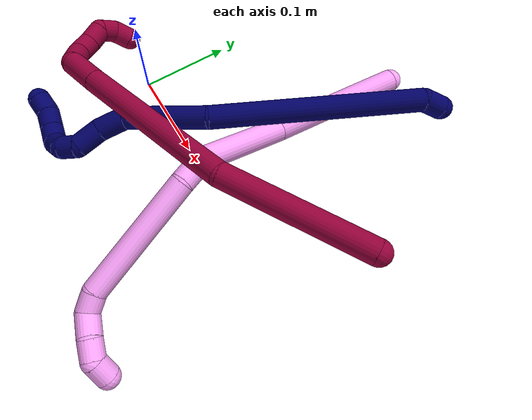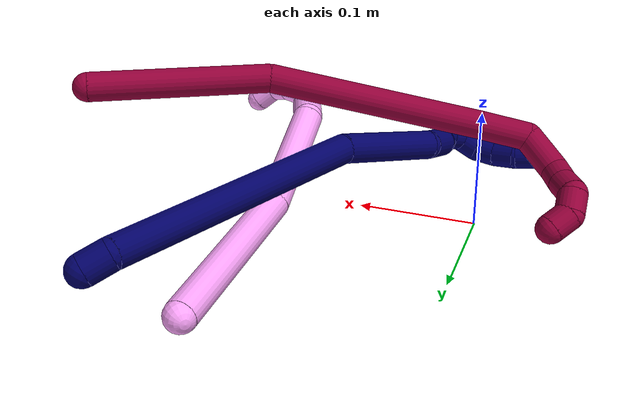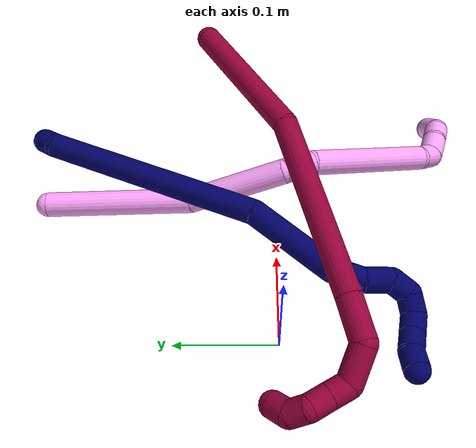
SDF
<sdf version="1.7">
 <world name="default">
  <model name="4">
   <static>0</static>
   <link name="4">
    <collision name="collision-cylinder-e_1_1_4">
     <pose>-0.027365 -0.045392 0.051741 0.720127 -0.378408 -0.143937</pose>
     <geometry><cylinder><radius>0.0125</radius><length>0.148142</length></cylinder></geometry>
     <surface>
      <friction><ode><mu>1.16</mu><mu2>1.16</mu2><slip1>0</slip1><slip2>0</slip2></ode></friction>
      <contact><ode><kp>1e+06</kp><kd>1</kd><max_vel>0</max_vel><min_depth>0.001</min_depth></ode></contact>
     </surface>
    </collision>
    <visual name="visual-cylinder-e_1_1_4">
     <pose>-0.027365 -0.045392 0.051741 0.720127 -0.378408 -0.143937</pose>
     <geometry><cylinder><radius>0.0125</radius><length>0.148142</length></cylinder></geometry>
     <material><ambient>1 0.65098 0.996078 1</ambient></material>
    </visual>
    <collision name="collision-cylinder-e_2_4_5">
     <pose>-0.084534 -0.110858 0.13918 0.512261 -0.629116 -0.170002</pose>
     <geometry><cylinder><radius>0.0125</radius><length>0.101302</length></cylinder></geometry>
     <surface>
      <friction><ode><mu>1.16</mu><mu2>1.16</mu2><slip1>0</slip1><slip2>0</slip2></ode></friction>
      <contact><ode><kp>1e+06</kp><kd>1</kd><max_vel>0</max_vel><min_depth>0.001</min_depth></ode></contact>
     </surface>
    </collision>
    <visual name="visual-cylinder-e_2_4_5">
     <pose>-0.084534 -0.110858 0.13918 0.512261 -0.629116 -0.170002</pose>
     <geometry><cylinder><radius>0.0125</radius><length>0.101302</length></cylinder></geometry>
     <material><ambient>1 0.65098 0.996078 1</ambient></material>
    </visual>
    <collision name="collision-cylinder-e_3_5_6">
     <pose>-0.116821 -0.136017 0.189421 0.336333 -0.159745 -0.027176</pose>
     <geometry><cylinder><radius>0.0125</radius><length>0.031213</length></cylinder></geometry>
     <surface>
      <friction><ode><mu>1.16</mu><mu2>1.16</mu2><slip1>0</slip1><slip2>0</slip2></ode></friction>
      <contact><ode><kp>1e+06</kp><kd>1</kd><max_vel>0</max_vel><min_depth>0.001</min_depth></ode></contact>
     </surface>
    </collision>
    <visual name="visual-cylinder-e_3_5_6">
     <pose>-0.116821 -0.136017 0.189421 0.336333 -0.159745 -0.027176</pose>
     <geometry><cylinder><radius>0.0125</radius><length>0.031213</length></cylinder></geometry>
     <material><ambient>1 0.65098 0.996078 1</ambient></material>
    </visual>
    <collision name="collision-cylinder-e_4_6_7">
     <pose>-0.114416 -0.171273 0.262146 0.478397 0.074432 0.018159</pose>
     <geometry><cylinder><radius>0.0125</radius><length>0.131442</length></cylinder></geometry>
     <surface>
      <friction><ode><mu>1.16</mu><mu2>1.16</mu2><slip1>0</slip1><slip2>0</slip2></ode></friction>
      <contact><ode><kp>1e+06</kp><kd>1</kd><max_vel>0</max_vel><min_depth>0.001</min_depth></ode></contact>
     </surface>
    </collision>
    <visual name="visual-cylinder-e_4_6_7">
     <pose>-0.114416 -0.171273 0.262146 0.478397 0.074432 0.018159</pose>
     <geometry><cylinder><radius>0.0125</radius><length>0.131442</length></cylinder></geometry>
     <material><ambient>1 0.65098 0.996078 1</ambient></material>
    </visual>
    <collision name="collision-cylinder-e_5_7_8">
     <pose>-0.105895 -0.203956 0.330194 0.249322 0.342841 0.043381</pose>
     <geometry><cylinder><radius>0.0125</radius><length>0.02162</length></cylinder></geometry>
     <surface>
      <friction><ode><mu>1.16</mu><mu2>1.16</mu2><slip1>0</slip1><slip2>0</slip2></ode></friction>
      <contact><ode><kp>1e+06</kp><kd>1</kd><max_vel>0</max_vel><min_depth>0.001</min_depth></ode></contact>
     </surface>
    </collision>
    <visual name="visual-cylinder-e_5_7_8">
     <pose>-0.105895 -0.203956 0.330194 0.249322 0.342841 0.043381</pose>
     <geometry><cylinder><radius>0.0125</radius><length>0.02162</length></cylinder></geometry>
     <material><ambient>1 0.65098 0.996078 1</ambient></material>
    </visual>
    <collision name="collision-cylinder-e_6_8_9">
     <pose>-0.101082 -0.200732 0.350821 -0.489718 0.096377 -0.0241</pose>
     <geometry><cylinder><radius>0.0125</radius><length>0.024503</length></cylinder></geometry>
     <surface>
      <friction><ode><mu>1.16</mu><mu2>1.16</mu2><slip1>0</slip1><slip2>0</slip2></ode></friction>
      <contact><ode><kp>1e+06</kp><kd>1</kd><max_vel>0</max_vel><min_depth>0.001</min_depth></ode></contact>
     </surface>
    </collision>
    <visual name="visual-cylinder-e_6_8_9">
     <pose>-0.101082 -0.200732 0.350821 -0.489718 0.096377 -0.0241</pose>
     <geometry><cylinder><radius>0.0125</radius><length>0.024503</length></cylinder></geometry>
     <material><ambient>1 0.65098 0.996078 1</ambient></material>
    </visual>
    <collision name="collision-cylinder-e_7_9_10">
     <pose>-0.096445 -0.19117 0.37039 -0.409868 0.345697 -0.072546</pose>
     <geometry><cylinder><radius>0.0125</radius><length>0.020414</length></cylinder></geometry>
     <surface>
      <friction><ode><mu>1.16</mu><mu2>1.16</mu2><slip1>0</slip1><slip2>0</slip2></ode></friction>
      <contact><ode><kp>1e+06</kp><kd>1</kd><max_vel>0</max_vel><min_depth>0.001</min_depth></ode></contact>
     </surface>
    </collision>
    <visual name="visual-cylinder-e_7_9_10">
     <pose>-0.096445 -0.19117 0.37039 -0.409868 0.345697 -0.072546</pose>
     <geometry><cylinder><radius>0.0125</radius><length>0.020414</length></cylinder></geometry>
     <material><ambient>1 0.65098 0.996078 1</ambient></material>
    </visual>
    <collision name="collision-cylinder-e_8_10_2">
     <pose>-0.084156 -0.18312 0.383477 -0.778814 0.973074 -0.427489</pose>
     <geometry><cylinder><radius>0.0125</radius><length>0.021365</length></cylinder></geometry>
     <surface>
      <friction><ode><mu>1.16</mu><mu2>1.16</mu2><slip1>0</slip1><slip2>0</slip2></ode></friction>
      <contact><ode><kp>1e+06</kp><kd>1</kd><max_vel>0</max_vel><min_depth>0.001</min_depth></ode></contact>
     </surface>
    </collision>
    <visual name="visual-cylinder-e_8_10_2">
     <pose>-0.084156 -0.18312 0.383477 -0.778814 0.973074 -0.427489</pose>
     <geometry><cylinder><radius>0.0125</radius><length>0.021365</length></cylinder></geometry>
     <material><ambient>1 0.65098 0.996078 1</ambient></material>
    </visual>
    <collision name="collision-sphere-2">
     <pose>-0.075326 -0.178897 0.387756 0 -0 0</pose>
     <geometry><sphere><radius>0.0125</radius></sphere></geometry>
     <surface>
      <friction><ode><mu>1.16</mu><mu2>1.16</mu2><slip1>0</slip1><slip2>0</slip2></ode></friction>
      <contact><ode><kp>1e+06</kp><kd>1</kd><max_vel>0</max_vel><min_depth>0.001</min_depth></ode></contact>
     </surface>
    </collision>
    <visual name="visual-sphere-2">
     <pose>-0.075326 -0.178897 0.387756 0 -0 0</pose>
     <geometry><sphere><radius>0.0125</radius></sphere></geometry>
     <material><ambient>1 0.65098 0.996078 1</ambient></material>
    </visual>
    <collision name="collision-sphere-10">
     <pose>-0.092986 -0.187343 0.379198 0 -0 0</pose>
     <geometry><sphere><radius>0.0125</radius></sphere></geometry>
     <surface>
      <friction><ode><mu>1.16</mu><mu2>1.16</mu2><slip1>0</slip1><slip2>0</slip2></ode></friction>
      <contact><ode><kp>1e+06</kp><kd>1</kd><max_vel>0</max_vel><min_depth>0.001</min_depth></ode></contact>
     </surface>
    </collision>
    <visual name="visual-sphere-10">
     <pose>-0.092986 -0.187343 0.379198 0 -0 0</pose>
     <geometry><sphere><radius>0.0125</radius></sphere></geometry>
     <material><ambient>1 0.65098 0.996078 1</ambient></material>
    </visual>
    <collision name="collision-sphere-9">
     <pose>-0.099903 -0.194996 0.361582 0 -0 0</pose>
     <geometry><sphere><radius>0.0125</radius></sphere></geometry>
     <surface>
      <friction><ode><mu>1.16</mu><mu2>1.16</mu2><slip1>0</slip1><slip2>0</slip2></ode></friction>
      <contact><ode><kp>1e+06</kp><kd>1</kd><max_vel>0</max_vel><min_depth>0.001</min_depth></ode></contact>
     </surface>
    </collision>
    <visual name="visual-sphere-9">
     <pose>-0.099903 -0.194996 0.361582 0 -0 0</pose>
     <geometry><sphere><radius>0.0125</radius></sphere></geometry>
     <material><ambient>1 0.65098 0.996078 1</ambient></material>
    </visual>
    <collision name="collision-sphere-4">
     <pose>-0.05473 -0.090785 0.103483 0 -0 0</pose>
     <geometry><sphere><radius>0.0125</radius></sphere></geometry>
     <surface>
      <friction><ode><mu>1.16</mu><mu2>1.16</mu2><slip1>0</slip1><slip2>0</slip2></ode></friction>
      <contact><ode><kp>1e+06</kp><kd>1</kd><max_vel>0</max_vel><min_depth>0.001</min_depth></ode></contact>
     </surface>
    </collision>
    <visual name="visual-sphere-4">
     <pose>-0.05473 -0.090785 0.103483 0 -0 0</pose>
     <geometry><sphere><radius>0.0125</radius></sphere></geometry>
     <material><ambient>1 0.65098 0.996078 1</ambient></material>
    </visual>
    <collision name="collision-sphere-1">
     <geometry><sphere><radius>0.0125</radius></sphere></geometry>
     <surface>
      <friction><ode><mu>1.16</mu><mu2>1.16</mu2><slip1>0</slip1><slip2>0</slip2></ode></friction>
      <contact><ode><kp>1e+06</kp><kd>1</kd><max_vel>0</max_vel><min_depth>0.001</min_depth></ode></contact>
     </surface>
    </collision>
    <visual name="visual-sphere-1">
     <geometry><sphere><radius>0.0125</radius></sphere></geometry>
     <material><ambient>1 0.65098 0.996078 1</ambient></material>
    </visual>
    <collision name="collision-sphere-8">
     <pose>-0.102261 -0.206468 0.34006 0 -0 0</pose>
     <geometry><sphere><radius>0.0125</radius></sphere></geometry>
     <surface>
      <friction><ode><mu>1.16</mu><mu2>1.16</mu2><slip1>0</slip1><slip2>0</slip2></ode></friction>
      <contact><ode><kp>1e+06</kp><kd>1</kd><max_vel>0</max_vel><min_depth>0.001</min_depth></ode></contact>
     </surface>
    </collision>
    <visual name="visual-sphere-8">
     <pose>-0.102261 -0.206468 0.34006 0 -0 0</pose>
     <geometry><sphere><radius>0.0125</radius></sphere></geometry>
     <material><ambient>1 0.65098 0.996078 1</ambient></material>
    </visual>
    <collision name="collision-sphere-5">
     <pose>-0.114339 -0.130932 0.174877 0 -0 0</pose>
     <geometry><sphere><radius>0.0125</radius></sphere></geometry>
     <surface>
      <friction><ode><mu>1.16</mu><mu2>1.16</mu2><slip1>0</slip1><slip2>0</slip2></ode></friction>
      <contact><ode><kp>1e+06</kp><kd>1</kd><max_vel>0</max_vel><min_depth>0.001</min_depth></ode></contact>
     </surface>
    </collision>
    <visual name="visual-sphere-5">
     <pose>-0.114339 -0.130932 0.174877 0 -0 0</pose>
     <geometry><sphere><radius>0.0125</radius></sphere></geometry>
     <material><ambient>1 0.65098 0.996078 1</ambient></material>
    </visual>
    <collision name="collision-sphere-6">
     <pose>-0.119304 -0.141102 0.203965 0 -0 0</pose>
     <geometry><sphere><radius>0.0125</radius></sphere></geometry>
     <surface>
      <friction><ode><mu>1.16</mu><mu2>1.16</mu2><slip1>0</slip1><slip2>0</slip2></ode></friction>
      <contact><ode><kp>1e+06</kp><kd>1</kd><max_vel>0</max_vel><min_depth>0.001</min_depth></ode></contact>
     </surface>
    </collision>
    <visual name="visual-sphere-6">
     <pose>-0.119304 -0.141102 0.203965 0 -0 0</pose>
     <geometry><sphere><radius>0.0125</radius></sphere></geometry>
     <material><ambient>1 0.65098 0.996078 1</ambient></material>
    </visual>
    <collision name="collision-sphere-7">
     <pose>-0.109529 -0.201444 0.320327 0 -0 0</pose>
     <geometry><sphere><radius>0.0125</radius></sphere></geometry>
     <surface>
      <friction><ode><mu>1.16</mu><mu2>1.16</mu2><slip1>0</slip1><slip2>0</slip2></ode></friction>
      <contact><ode><kp>1e+06</kp><kd>1</kd><max_vel>0</max_vel><min_depth>0.001</min_depth></ode></contact>
     </surface>
    </collision>
    <visual name="visual-sphere-7">
     <pose>-0.109529 -0.201444 0.320327 0 -0 0</pose>
     <geometry><sphere><radius>0.0125</radius></sphere></geometry>
     <material><ambient>1 0.65098 0.996078 1</ambient></material>
    </visual>
    <inertial>
     <pose>-0.079672 -0.123711 0.187245 0 -0 0</pose>
     <mass>0.5</mass>
     <inertia>
      <ixx>0.000478</ixx>
      <ixy>0</ixy>
      <ixz>0</ixz>
      <iyy>0.00042</iyy>
      <iyz>0</iyz>
      <izz>0.000463</izz>
     </inertia>
    </inertial>
   </link>
   <pose>0.150378 0.234552 0.024955 1.66478 1.17383 0.842845</pose>
  </model>
  <model name="7">
   <static>0</static>
   <link name="7">
    <collision name="collision-cylinder-e_1_1_4">
     <pose>-0.003232 -0.004319 0.009133 0.441722 -0.309644 -0.070055</pose>
     <geometry><cylinder><radius>0.0125</radius><length>0.021213</length></cylinder></geometry>
     <surface>
      <friction><ode><mu>1.16</mu><mu2>1.16</mu2><slip1>0</slip1><slip2>0</slip2></ode></friction>
      <contact><ode><kp>1e+06</kp><kd>1</kd><max_vel>0</max_vel><min_depth>0.001</min_depth></ode></contact>
     </surface>
    </collision>
    <visual name="visual-cylinder-e_1_1_4">
     <pose>-0.003232 -0.004319 0.009133 0.441722 -0.309644 -0.070055</pose>
     <geometry><cylinder><radius>0.0125</radius><length>0.021213</length></cylinder></geometry>
     <material><ambient>0.003922 0 0.403922 1</ambient></material>
    </visual>
    <collision name="collision-cylinder-e_2_4_5">
     <pose>-0.015028 -0.095441 0.090765 0.874944 -0.075577 -0.03536</pose>
     <geometry><cylinder><radius>0.0125</radius><length>0.226843</length></cylinder></geometry>
     <surface>
      <friction><ode><mu>1.16</mu><mu2>1.16</mu2><slip1>0</slip1><slip2>0</slip2></ode></friction>
      <contact><ode><kp>1e+06</kp><kd>1</kd><max_vel>0</max_vel><min_depth>0.001</min_depth></ode></contact>
     </surface>
    </collision>
    <visual name="visual-cylinder-e_2_4_5">
     <pose>-0.015028 -0.095441 0.090765 0.874944 -0.075577 -0.03536</pose>
     <geometry><cylinder><radius>0.0125</radius><length>0.226843</length></cylinder></geometry>
     <material><ambient>0.003922 0 0.403922 1</ambient></material>
    </visual>
    <collision name="collision-cylinder-e_3_5_6">
     <pose>-0.038705 -0.219919 0.184944 1.04865 -0.334614 -0.194721</pose>
     <geometry><cylinder><radius>0.0125</radius><length>0.092039</length></cylinder></geometry>
     <surface>
      <friction><ode><mu>1.16</mu><mu2>1.16</mu2><slip1>0</slip1><slip2>0</slip2></ode></friction>
      <contact><ode><kp>1e+06</kp><kd>1</kd><max_vel>0</max_vel><min_depth>0.001</min_depth></ode></contact>
     </surface>
    </collision>
    <visual name="visual-cylinder-e_3_5_6">
     <pose>-0.038705 -0.219919 0.184944 1.04865 -0.334614 -0.194721</pose>
     <geometry><cylinder><radius>0.0125</radius><length>0.092039</length></cylinder></geometry>
     <material><ambient>0.003922 0 0.403922 1</ambient></material>
    </visual>
    <collision name="collision-cylinder-e_4_6_7">
     <pose>-0.052584 -0.271976 0.211897 1.2193 0.080383 0.056155</pose>
     <geometry><cylinder><radius>0.0125</radius><length>0.030734</length></cylinder></geometry>
     <surface>
      <friction><ode><mu>1.16</mu><mu2>1.16</mu2><slip1>0</slip1><slip2>0</slip2></ode></friction>
      <contact><ode><kp>1e+06</kp><kd>1</kd><max_vel>0</max_vel><min_depth>0.001</min_depth></ode></contact>
     </surface>
    </collision>
    <visual name="visual-cylinder-e_4_6_7">
     <pose>-0.052584 -0.271976 0.211897 1.2193 0.080383 0.056155</pose>
     <geometry><cylinder><radius>0.0125</radius><length>0.030734</length></cylinder></geometry>
     <material><ambient>0.003922 0 0.403922 1</ambient></material>
    </visual>
    <collision name="collision-cylinder-e_5_7_8">
     <pose>-0.045771 -0.298956 0.221903 1.21157 0.392973 0.274028</pose>
     <geometry><cylinder><radius>0.0125</radius><length>0.029137</length></cylinder></geometry>
     <surface>
      <friction><ode><mu>1.16</mu><mu2>1.16</mu2><slip1>0</slip1><slip2>0</slip2></ode></friction>
      <contact><ode><kp>1e+06</kp><kd>1</kd><max_vel>0</max_vel><min_depth>0.001</min_depth></ode></contact>
     </surface>
    </collision>
    <visual name="visual-cylinder-e_5_7_8">
     <pose>-0.045771 -0.298956 0.221903 1.21157 0.392973 0.274028</pose>
     <geometry><cylinder><radius>0.0125</radius><length>0.029137</length></cylinder></geometry>
     <material><ambient>0.003922 0 0.403922 1</ambient></material>
    </visual>
    <collision name="collision-cylinder-e_6_8_9">
     <pose>-0.043388 -0.320222 0.230501 1.15115 -0.324751 -0.211795</pose>
     <geometry><cylinder><radius>0.0125</radius><length>0.020028</length></cylinder></geometry>
     <surface>
      <friction><ode><mu>1.16</mu><mu2>1.16</mu2><slip1>0</slip1><slip2>0</slip2></ode></friction>
      <contact><ode><kp>1e+06</kp><kd>1</kd><max_vel>0</max_vel><min_depth>0.001</min_depth></ode></contact>
     </surface>
    </collision>
    <visual name="visual-cylinder-e_6_8_9">
     <pose>-0.043388 -0.320222 0.230501 1.15115 -0.324751 -0.211795</pose>
     <geometry><cylinder><radius>0.0125</radius><length>0.020028</length></cylinder></geometry>
     <material><ambient>0.003922 0 0.403922 1</ambient></material>
    </visual>
    <collision name="collision-cylinder-e_7_9_10">
     <pose>-0.05453 -0.33496 0.234187 1.60052 -0.918255 -0.942089</pose>
     <geometry><cylinder><radius>0.0125</radius><length>0.020004</length></cylinder></geometry>
     <surface>
      <friction><ode><mu>1.16</mu><mu2>1.16</mu2><slip1>0</slip1><slip2>0</slip2></ode></friction>
      <contact><ode><kp>1e+06</kp><kd>1</kd><max_vel>0</max_vel><min_depth>0.001</min_depth></ode></contact>
     </surface>
    </collision>
    <visual name="visual-cylinder-e_7_9_10">
     <pose>-0.05453 -0.33496 0.234187 1.60052 -0.918255 -0.942089</pose>
     <geometry><cylinder><radius>0.0125</radius><length>0.020004</length></cylinder></geometry>
     <material><ambient>0.003922 0 0.403922 1</ambient></material>
    </visual>
    <collision name="collision-cylinder-e_8_10_11">
     <pose>-0.072235 -0.341173 0.236192 0.065198 -1.35002 -0.052193</pose>
     <geometry><cylinder><radius>0.0125</radius><length>0.02</length></cylinder></geometry>
     <surface>
      <friction><ode><mu>1.16</mu><mu2>1.16</mu2><slip1>0</slip1><slip2>0</slip2></ode></friction>
      <contact><ode><kp>1e+06</kp><kd>1</kd><max_vel>0</max_vel><min_depth>0.001</min_depth></ode></contact>
     </surface>
    </collision>
    <visual name="visual-cylinder-e_8_10_11">
     <pose>-0.072235 -0.341173 0.236192 0.065198 -1.35002 -0.052193</pose>
     <geometry><cylinder><radius>0.0125</radius><length>0.02</length></cylinder></geometry>
     <material><ambient>0.003922 0 0.403922 1</ambient></material>
    </visual>
    <collision name="collision-cylinder-e_9_11_12">
     <pose>-0.091334 -0.340242 0.241779 -0.30572 -1.20602 0.211373</pose>
     <geometry><cylinder><radius>0.0125</radius><length>0.02</length></cylinder></geometry>
     <surface>
      <friction><ode><mu>1.16</mu><mu2>1.16</mu2><slip1>0</slip1><slip2>0</slip2></ode></friction>
      <contact><ode><kp>1e+06</kp><kd>1</kd><max_vel>0</max_vel><min_depth>0.001</min_depth></ode></contact>
     </surface>
    </collision>
    <visual name="visual-cylinder-e_9_11_12">
     <pose>-0.091334 -0.340242 0.241779 -0.30572 -1.20602 0.211373</pose>
     <geometry><cylinder><radius>0.0125</radius><length>0.02</length></cylinder></geometry>
     <material><ambient>0.003922 0 0.403922 1</ambient></material>
    </visual>
    <collision name="collision-cylinder-e_10_12_2">
     <pose>-0.109195 -0.340568 0.250228 0.270516 -1.01958 -0.151878</pose>
     <geometry><cylinder><radius>0.0125</radius><length>0.02</length></cylinder></geometry>
     <surface>
      <friction><ode><mu>1.16</mu><mu2>1.16</mu2><slip1>0</slip1><slip2>0</slip2></ode></friction>
      <contact><ode><kp>1e+06</kp><kd>1</kd><max_vel>0</max_vel><min_depth>0.001</min_depth></ode></contact>
     </surface>
    </collision>
    <visual name="visual-cylinder-e_10_12_2">
     <pose>-0.109195 -0.340568 0.250228 0.270516 -1.01958 -0.151878</pose>
     <geometry><cylinder><radius>0.0125</radius><length>0.02</length></cylinder></geometry>
     <material><ambient>0.003922 0 0.403922 1</ambient></material>
    </visual>
    <collision name="collision-sphere-2">
     <pose>-0.117714 -0.341968 0.255274 0 -0 0</pose>
     <geometry><sphere><radius>0.0125</radius></sphere></geometry>
     <surface>
      <friction><ode><mu>1.16</mu><mu2>1.16</mu2><slip1>0</slip1><slip2>0</slip2></ode></friction>
      <contact><ode><kp>1e+06</kp><kd>1</kd><max_vel>0</max_vel><min_depth>0.001</min_depth></ode></contact>
     </surface>
    </collision>
    <visual name="visual-sphere-2">
     <pose>-0.117714 -0.341968 0.255274 0 -0 0</pose>
     <geometry><sphere><radius>0.0125</radius></sphere></geometry>
     <material><ambient>0.003922 0 0.403922 1</ambient></material>
    </visual>
    <collision name="collision-sphere-12">
     <pose>-0.100676 -0.339169 0.245181 0 -0 0</pose>
     <geometry><sphere><radius>0.0125</radius></sphere></geometry>
     <surface>
      <friction><ode><mu>1.16</mu><mu2>1.16</mu2><slip1>0</slip1><slip2>0</slip2></ode></friction>
      <contact><ode><kp>1e+06</kp><kd>1</kd><max_vel>0</max_vel><min_depth>0.001</min_depth></ode></contact>
     </surface>
    </collision>
    <visual name="visual-sphere-12">
     <pose>-0.100676 -0.339169 0.245181 0 -0 0</pose>
     <geometry><sphere><radius>0.0125</radius></sphere></geometry>
     <material><ambient>0.003922 0 0.403922 1</ambient></material>
    </visual>
    <collision name="collision-sphere-11">
     <pose>-0.081992 -0.341316 0.238377 0 -0 0</pose>
     <geometry><sphere><radius>0.0125</radius></sphere></geometry>
     <surface>
      <friction><ode><mu>1.16</mu><mu2>1.16</mu2><slip1>0</slip1><slip2>0</slip2></ode></friction>
      <contact><ode><kp>1e+06</kp><kd>1</kd><max_vel>0</max_vel><min_depth>0.001</min_depth></ode></contact>
     </surface>
    </collision>
    <visual name="visual-sphere-11">
     <pose>-0.081992 -0.341316 0.238377 0 -0 0</pose>
     <geometry><sphere><radius>0.0125</radius></sphere></geometry>
     <material><ambient>0.003922 0 0.403922 1</ambient></material>
    </visual>
    <collision name="collision-sphere-10">
     <pose>-0.062477 -0.341031 0.234006 0 -0 0</pose>
     <geometry><sphere><radius>0.0125</radius></sphere></geometry>
     <surface>
      <friction><ode><mu>1.16</mu><mu2>1.16</mu2><slip1>0</slip1><slip2>0</slip2></ode></friction>
      <contact><ode><kp>1e+06</kp><kd>1</kd><max_vel>0</max_vel><min_depth>0.001</min_depth></ode></contact>
     </surface>
    </collision>
    <visual name="visual-sphere-10">
     <pose>-0.062477 -0.341031 0.234006 0 -0 0</pose>
     <geometry><sphere><radius>0.0125</radius></sphere></geometry>
     <material><ambient>0.003922 0 0.403922 1</ambient></material>
    </visual>
    <collision name="collision-sphere-9">
     <pose>-0.046583 -0.328889 0.234367 0 -0 0</pose>
     <geometry><sphere><radius>0.0125</radius></sphere></geometry>
     <surface>
      <friction><ode><mu>1.16</mu><mu2>1.16</mu2><slip1>0</slip1><slip2>0</slip2></ode></friction>
      <contact><ode><kp>1e+06</kp><kd>1</kd><max_vel>0</max_vel><min_depth>0.001</min_depth></ode></contact>
     </surface>
    </collision>
    <visual name="visual-sphere-9">
     <pose>-0.046583 -0.328889 0.234367 0 -0 0</pose>
     <geometry><sphere><radius>0.0125</radius></sphere></geometry>
     <material><ambient>0.003922 0 0.403922 1</ambient></material>
    </visual>
    <collision name="collision-sphere-4">
     <pose>-0.006464 -0.008637 0.018265 0 -0 0</pose>
     <geometry><sphere><radius>0.0125</radius></sphere></geometry>
     <surface>
      <friction><ode><mu>1.16</mu><mu2>1.16</mu2><slip1>0</slip1><slip2>0</slip2></ode></friction>
      <contact><ode><kp>1e+06</kp><kd>1</kd><max_vel>0</max_vel><min_depth>0.001</min_depth></ode></contact>
     </surface>
    </collision>
    <visual name="visual-sphere-4">
     <pose>-0.006464 -0.008637 0.018265 0 -0 0</pose>
     <geometry><sphere><radius>0.0125</radius></sphere></geometry>
     <material><ambient>0.003922 0 0.403922 1</ambient></material>
    </visual>
    <collision name="collision-sphere-1">
     <geometry><sphere><radius>0.0125</radius></sphere></geometry>
     <surface>
      <friction><ode><mu>1.16</mu><mu2>1.16</mu2><slip1>0</slip1><slip2>0</slip2></ode></friction>
      <contact><ode><kp>1e+06</kp><kd>1</kd><max_vel>0</max_vel><min_depth>0.001</min_depth></ode></contact>
     </surface>
    </collision>
    <visual name="visual-sphere-1">
     <geometry><sphere><radius>0.0125</radius></sphere></geometry>
     <material><ambient>0.003922 0 0.403922 1</ambient></material>
    </visual>
    <collision name="collision-sphere-8">
     <pose>-0.040193 -0.311555 0.226634 0 -0 0</pose>
     <geometry><sphere><radius>0.0125</radius></sphere></geometry>
     <surface>
      <friction><ode><mu>1.16</mu><mu2>1.16</mu2><slip1>0</slip1><slip2>0</slip2></ode></friction>
      <contact><ode><kp>1e+06</kp><kd>1</kd><max_vel>0</max_vel><min_depth>0.001</min_depth></ode></contact>
     </surface>
    </collision>
    <visual name="visual-sphere-8">
     <pose>-0.040193 -0.311555 0.226634 0 -0 0</pose>
     <geometry><sphere><radius>0.0125</radius></sphere></geometry>
     <material><ambient>0.003922 0 0.403922 1</ambient></material>
    </visual>
    <collision name="collision-sphere-5">
     <pose>-0.023592 -0.182244 0.163265 0 -0 0</pose>
     <geometry><sphere><radius>0.0125</radius></sphere></geometry>
     <surface>
      <friction><ode><mu>1.16</mu><mu2>1.16</mu2><slip1>0</slip1><slip2>0</slip2></ode></friction>
      <contact><ode><kp>1e+06</kp><kd>1</kd><max_vel>0</max_vel><min_depth>0.001</min_depth></ode></contact>
     </surface>
    </collision>
    <visual name="visual-sphere-5">
     <pose>-0.023592 -0.182244 0.163265 0 -0 0</pose>
     <geometry><sphere><radius>0.0125</radius></sphere></geometry>
     <material><ambient>0.003922 0 0.403922 1</ambient></material>
    </visual>
    <collision name="collision-sphere-6">
     <pose>-0.053818 -0.257595 0.206624 0 -0 0</pose>
     <geometry><sphere><radius>0.0125</radius></sphere></geometry>
     <surface>
      <friction><ode><mu>1.16</mu><mu2>1.16</mu2><slip1>0</slip1><slip2>0</slip2></ode></friction>
      <contact><ode><kp>1e+06</kp><kd>1</kd><max_vel>0</max_vel><min_depth>0.001</min_depth></ode></contact>
     </surface>
    </collision>
    <visual name="visual-sphere-6">
     <pose>-0.053818 -0.257595 0.206624 0 -0 0</pose>
     <geometry><sphere><radius>0.0125</radius></sphere></geometry>
     <material><ambient>0.003922 0 0.403922 1</ambient></material>
    </visual>
    <collision name="collision-sphere-7">
     <pose>-0.05135 -0.286357 0.217171 0 -0 0</pose>
     <geometry><sphere><radius>0.0125</radius></sphere></geometry>
     <surface>
      <friction><ode><mu>1.16</mu><mu2>1.16</mu2><slip1>0</slip1><slip2>0</slip2></ode></friction>
      <contact><ode><kp>1e+06</kp><kd>1</kd><max_vel>0</max_vel><min_depth>0.001</min_depth></ode></contact>
     </surface>
    </collision>
    <visual name="visual-sphere-7">
     <pose>-0.05135 -0.286357 0.217171 0 -0 0</pose>
     <geometry><sphere><radius>0.0125</radius></sphere></geometry>
     <material><ambient>0.003922 0 0.403922 1</ambient></material>
    </visual>
    <inertial>
     <pose>-0.03481 -0.185213 0.149298 0 -0 0</pose>
     <mass>0.5</mass>
     <inertia>
      <ixx>0.000997</ixx>
      <ixy>0</ixy>
      <ixz>0</ixz>
      <iyy>0.000604</iyy>
      <iyz>0</iyz>
      <izz>0.000938</izz>
     </inertia>
    </inertial>
   </link>
   <pose>0.21624 0.243725 0.051911 0.661409 -0.225167 -0.3458</pose>
  </model>
  <model name="8">
   <static>0</static>
   <link name="8">
    <collision name="collision-cylinder-e_1_1_4">
     <pose>-0.076188 -0.000519 0.009495 0.054645 -1.44663 -0.048252</pose>
     <geometry><cylinder><radius>0.0125</radius><length>0.153559</length></cylinder></geometry>
     <surface>
      <friction><ode><mu>1.16</mu><mu2>1.16</mu2><slip1>0</slip1><slip2>0</slip2></ode></friction>
      <contact><ode><kp>1e+06</kp><kd>1</kd><max_vel>0</max_vel><min_depth>0.001</min_depth></ode></contact>
     </surface>
    </collision>
    <visual name="visual-cylinder-e_1_1_4">
     <pose>-0.076188 -0.000519 0.009495 0.054645 -1.44663 -0.048252</pose>
     <geometry><cylinder><radius>0.0125</radius><length>0.153559</length></cylinder></geometry>
     <material><ambient>0.584314 0 0.227451 1</ambient></material>
    </visual>
    <collision name="collision-cylinder-e_2_4_5">
     <pose>-0.236999 0.011323 0.056054 -0.32192 -1.13825 0.206998</pose>
     <geometry><cylinder><radius>0.0125</radius><length>0.186414</length></cylinder></geometry>
     <surface>
      <friction><ode><mu>1.16</mu><mu2>1.16</mu2><slip1>0</slip1><slip2>0</slip2></ode></friction>
      <contact><ode><kp>1e+06</kp><kd>1</kd><max_vel>0</max_vel><min_depth>0.001</min_depth></ode></contact>
     </surface>
    </collision>
    <visual name="visual-cylinder-e_2_4_5">
     <pose>-0.236999 0.011323 0.056054 -0.32192 -1.13825 0.206998</pose>
     <geometry><cylinder><radius>0.0125</radius><length>0.186414</length></cylinder></geometry>
     <material><ambient>0.584314 0 0.227451 1</ambient></material>
    </visual>
    <collision name="collision-cylinder-e_3_5_6">
     <pose>-0.340804 0.026673 0.102345 -0.313237 -1.10265 0.193602</pose>
     <geometry><cylinder><radius>0.0125</radius><length>0.042989</length></cylinder></geometry>
     <surface>
      <friction><ode><mu>1.16</mu><mu2>1.16</mu2><slip1>0</slip1><slip2>0</slip2></ode></friction>
      <contact><ode><kp>1e+06</kp><kd>1</kd><max_vel>0</max_vel><min_depth>0.001</min_depth></ode></contact>
     </surface>
    </collision>
    <visual name="visual-cylinder-e_3_5_6">
     <pose>-0.340804 0.026673 0.102345 -0.313237 -1.10265 0.193602</pose>
     <geometry><cylinder><radius>0.0125</radius><length>0.042989</length></cylinder></geometry>
     <material><ambient>0.584314 0 0.227451 1</ambient></material>
    </visual>
    <collision name="collision-cylinder-e_4_6_7">
     <pose>-0.36659 0.037881 0.126628 -0.499692 -0.367552 0.094791</pose>
     <geometry><cylinder><radius>0.0125</radius><length>0.036761</length></cylinder></geometry>
     <surface>
      <friction><ode><mu>1.16</mu><mu2>1.16</mu2><slip1>0</slip1><slip2>0</slip2></ode></friction>
      <contact><ode><kp>1e+06</kp><kd>1</kd><max_vel>0</max_vel><min_depth>0.001</min_depth></ode></contact>
     </surface>
    </collision>
    <visual name="visual-cylinder-e_4_6_7">
     <pose>-0.36659 0.037881 0.126628 -0.499692 -0.367552 0.094791</pose>
     <geometry><cylinder><radius>0.0125</radius><length>0.036761</length></cylinder></geometry>
     <material><ambient>0.584314 0 0.227451 1</ambient></material>
    </visual>
    <collision name="collision-cylinder-e_5_7_8">
     <pose>-0.371458 0.045445 0.151591 0.065982 0.173193 0.00573</pose>
     <geometry><cylinder><radius>0.0125</radius><length>0.020162</length></cylinder></geometry>
     <surface>
      <friction><ode><mu>1.16</mu><mu2>1.16</mu2><slip1>0</slip1><slip2>0</slip2></ode></friction>
      <contact><ode><kp>1e+06</kp><kd>1</kd><max_vel>0</max_vel><min_depth>0.001</min_depth></ode></contact>
     </surface>
    </collision>
    <visual name="visual-cylinder-e_5_7_8">
     <pose>-0.371458 0.045445 0.151591 0.065982 0.173193 0.00573</pose>
     <geometry><cylinder><radius>0.0125</radius><length>0.020162</length></cylinder></geometry>
     <material><ambient>0.584314 0 0.227451 1</ambient></material>
    </visual>
    <collision name="collision-cylinder-e_6_8_9">
     <pose>-0.368464 0.043026 0.171293 0.178261 0.125612 0.01124</pose>
     <geometry><cylinder><radius>0.0125</radius><length>0.020061</length></cylinder></geometry>
     <surface>
      <friction><ode><mu>1.16</mu><mu2>1.16</mu2><slip1>0</slip1><slip2>0</slip2></ode></friction>
      <contact><ode><kp>1e+06</kp><kd>1</kd><max_vel>0</max_vel><min_depth>0.001</min_depth></ode></contact>
     </surface>
    </collision>
    <visual name="visual-cylinder-e_6_8_9">
     <pose>-0.368464 0.043026 0.171293 0.178261 0.125612 0.01124</pose>
     <geometry><cylinder><radius>0.0125</radius><length>0.020061</length></cylinder></geometry>
     <material><ambient>0.584314 0 0.227451 1</ambient></material>
    </visual>
    <collision name="collision-cylinder-e_7_9_10">
     <pose>-0.36229 0.045776 0.188557 -0.543678 0.513095 -0.145982</pose>
     <geometry><cylinder><radius>0.0125</radius><length>0.020036</length></cylinder></geometry>
     <surface>
      <friction><ode><mu>1.16</mu><mu2>1.16</mu2><slip1>0</slip1><slip2>0</slip2></ode></friction>
      <contact><ode><kp>1e+06</kp><kd>1</kd><max_vel>0</max_vel><min_depth>0.001</min_depth></ode></contact>
     </surface>
    </collision>
    <visual name="visual-cylinder-e_7_9_10">
     <pose>-0.36229 0.045776 0.188557 -0.543678 0.513095 -0.145982</pose>
     <geometry><cylinder><radius>0.0125</radius><length>0.020036</length></cylinder></geometry>
     <material><ambient>0.584314 0 0.227451 1</ambient></material>
    </visual>
    <collision name="collision-cylinder-e_8_10_2">
     <pose>-0.348412 0.05427 0.198041 -1.10217 1.10893 -0.727345</pose>
     <geometry><cylinder><radius>0.0125</radius><length>0.020019</length></cylinder></geometry>
     <surface>
      <friction><ode><mu>1.16</mu><mu2>1.16</mu2><slip1>0</slip1><slip2>0</slip2></ode></friction>
      <contact><ode><kp>1e+06</kp><kd>1</kd><max_vel>0</max_vel><min_depth>0.001</min_depth></ode></contact>
     </surface>
    </collision>
    <visual name="visual-cylinder-e_8_10_2">
     <pose>-0.348412 0.05427 0.198041 -1.10217 1.10893 -0.727345</pose>
     <geometry><cylinder><radius>0.0125</radius><length>0.020019</length></cylinder></geometry>
     <material><ambient>0.584314 0 0.227451 1</ambient></material>
    </visual>
    <collision name="collision-sphere-2">
     <pose>-0.339451 0.05825 0.200055 0 -0 0</pose>
     <geometry><sphere><radius>0.0125</radius></sphere></geometry>
     <surface>
      <friction><ode><mu>1.16</mu><mu2>1.16</mu2><slip1>0</slip1><slip2>0</slip2></ode></friction>
      <contact><ode><kp>1e+06</kp><kd>1</kd><max_vel>0</max_vel><min_depth>0.001</min_depth></ode></contact>
     </surface>
    </collision>
    <visual name="visual-sphere-2">
     <pose>-0.339451 0.05825 0.200055 0 -0 0</pose>
     <geometry><sphere><radius>0.0125</radius></sphere></geometry>
     <material><ambient>0.584314 0 0.227451 1</ambient></material>
    </visual>
    <collision name="collision-sphere-10">
     <pose>-0.357372 0.050291 0.196026 0 -0 0</pose>
     <geometry><sphere><radius>0.0125</radius></sphere></geometry>
     <surface>
      <friction><ode><mu>1.16</mu><mu2>1.16</mu2><slip1>0</slip1><slip2>0</slip2></ode></friction>
      <contact><ode><kp>1e+06</kp><kd>1</kd><max_vel>0</max_vel><min_depth>0.001</min_depth></ode></contact>
     </surface>
    </collision>
    <visual name="visual-sphere-10">
     <pose>-0.357372 0.050291 0.196026 0 -0 0</pose>
     <geometry><sphere><radius>0.0125</radius></sphere></geometry>
     <material><ambient>0.584314 0 0.227451 1</ambient></material>
    </visual>
    <collision name="collision-sphere-9">
     <pose>-0.367208 0.041261 0.181087 0 -0 0</pose>
     <geometry><sphere><radius>0.0125</radius></sphere></geometry>
     <surface>
      <friction><ode><mu>1.16</mu><mu2>1.16</mu2><slip1>0</slip1><slip2>0</slip2></ode></friction>
      <contact><ode><kp>1e+06</kp><kd>1</kd><max_vel>0</max_vel><min_depth>0.001</min_depth></ode></contact>
     </surface>
    </collision>
    <visual name="visual-sphere-9">
     <pose>-0.367208 0.041261 0.181087 0 -0 0</pose>
     <geometry><sphere><radius>0.0125</radius></sphere></geometry>
     <material><ambient>0.584314 0 0.227451 1</ambient></material>
    </visual>
    <collision name="collision-sphere-4">
     <pose>-0.152377 -0.001039 0.01899 0 -0 0</pose>
     <geometry><sphere><radius>0.0125</radius></sphere></geometry>
     <surface>
      <friction><ode><mu>1.16</mu><mu2>1.16</mu2><slip1>0</slip1><slip2>0</slip2></ode></friction>
      <contact><ode><kp>1e+06</kp><kd>1</kd><max_vel>0</max_vel><min_depth>0.001</min_depth></ode></contact>
     </surface>
    </collision>
    <visual name="visual-sphere-4">
     <pose>-0.152377 -0.001039 0.01899 0 -0 0</pose>
     <geometry><sphere><radius>0.0125</radius></sphere></geometry>
     <material><ambient>0.584314 0 0.227451 1</ambient></material>
    </visual>
    <collision name="collision-sphere-1">
     <geometry><sphere><radius>0.0125</radius></sphere></geometry>
     <surface>
      <friction><ode><mu>1.16</mu><mu2>1.16</mu2><slip1>0</slip1><slip2>0</slip2></ode></friction>
      <contact><ode><kp>1e+06</kp><kd>1</kd><max_vel>0</max_vel><min_depth>0.001</min_depth></ode></contact>
     </surface>
    </collision>
    <visual name="visual-sphere-1">
     <geometry><sphere><radius>0.0125</radius></sphere></geometry>
     <material><ambient>0.584314 0 0.227451 1</ambient></material>
    </visual>
    <collision name="collision-sphere-8">
     <pose>-0.369721 0.04479 0.1615 0 -0 0</pose>
     <geometry><sphere><radius>0.0125</radius></sphere></geometry>
     <surface>
      <friction><ode><mu>1.16</mu><mu2>1.16</mu2><slip1>0</slip1><slip2>0</slip2></ode></friction>
      <contact><ode><kp>1e+06</kp><kd>1</kd><max_vel>0</max_vel><min_depth>0.001</min_depth></ode></contact>
     </surface>
    </collision>
    <visual name="visual-sphere-8">
     <pose>-0.369721 0.04479 0.1615 0 -0 0</pose>
     <geometry><sphere><radius>0.0125</radius></sphere></geometry>
     <material><ambient>0.584314 0 0.227451 1</ambient></material>
    </visual>
    <collision name="collision-sphere-5">
     <pose>-0.321622 0.023685 0.093118 0 -0 0</pose>
     <geometry><sphere><radius>0.0125</radius></sphere></geometry>
     <surface>
      <friction><ode><mu>1.16</mu><mu2>1.16</mu2><slip1>0</slip1><slip2>0</slip2></ode></friction>
      <contact><ode><kp>1e+06</kp><kd>1</kd><max_vel>0</max_vel><min_depth>0.001</min_depth></ode></contact>
     </surface>
    </collision>
    <visual name="visual-sphere-5">
     <pose>-0.321622 0.023685 0.093118 0 -0 0</pose>
     <geometry><sphere><radius>0.0125</radius></sphere></geometry>
     <material><ambient>0.584314 0 0.227451 1</ambient></material>
    </visual>
    <collision name="collision-sphere-6">
     <pose>-0.359986 0.029662 0.111572 0 -0 0</pose>
     <geometry><sphere><radius>0.0125</radius></sphere></geometry>
     <surface>
      <friction><ode><mu>1.16</mu><mu2>1.16</mu2><slip1>0</slip1><slip2>0</slip2></ode></friction>
      <contact><ode><kp>1e+06</kp><kd>1</kd><max_vel>0</max_vel><min_depth>0.001</min_depth></ode></contact>
     </surface>
    </collision>
    <visual name="visual-sphere-6">
     <pose>-0.359986 0.029662 0.111572 0 -0 0</pose>
     <geometry><sphere><radius>0.0125</radius></sphere></geometry>
     <material><ambient>0.584314 0 0.227451 1</ambient></material>
    </visual>
    <collision name="collision-sphere-7">
     <pose>-0.373195 0.0461 0.141683 0 -0 0</pose>
     <geometry><sphere><radius>0.0125</radius></sphere></geometry>
     <surface>
      <friction><ode><mu>1.16</mu><mu2>1.16</mu2><slip1>0</slip1><slip2>0</slip2></ode></friction>
      <contact><ode><kp>1e+06</kp><kd>1</kd><max_vel>0</max_vel><min_depth>0.001</min_depth></ode></contact>
     </surface>
    </collision>
    <visual name="visual-sphere-7">
     <pose>-0.373195 0.0461 0.141683 0 -0 0</pose>
     <geometry><sphere><radius>0.0125</radius></sphere></geometry>
     <material><ambient>0.584314 0 0.227451 1</ambient></material>
    </visual>
    <inertial>
     <pose>-0.226242 0.016706 0.070394 0 -0 0</pose>
     <mass>0.5</mass>
     <inertia>
      <ixx>0.000295</ixx>
      <ixy>0</ixy>
      <ixz>0</ixz>
      <iyy>0.000917</iyy>
      <iyz>0</iyz>
      <izz>0.00075</izz>
     </inertia>
    </inertial>
   </link>
   <pose>0.31798 0.070735 0.107858 -1.76365 -0.002489 0.661931</pose>
  </model>
 </world>
</sdf>
